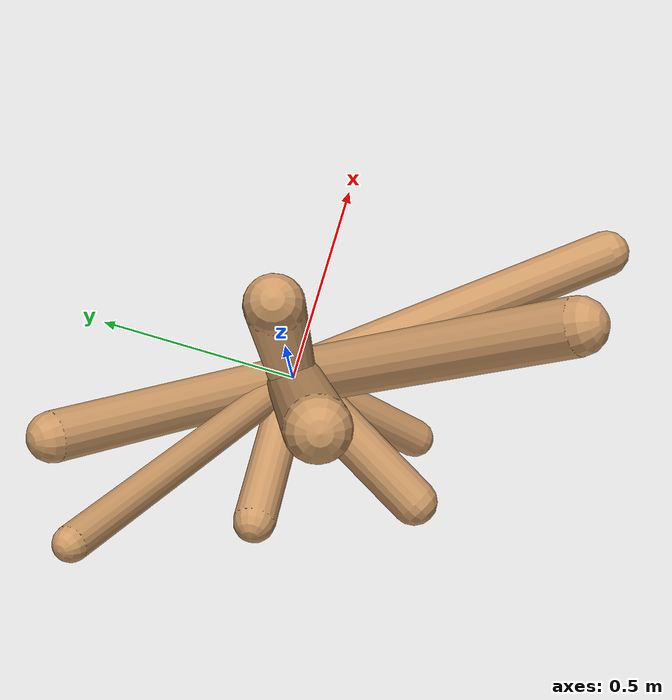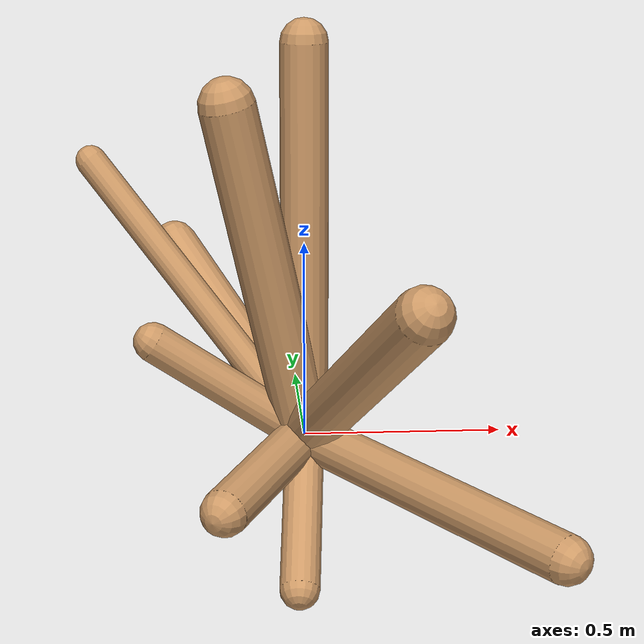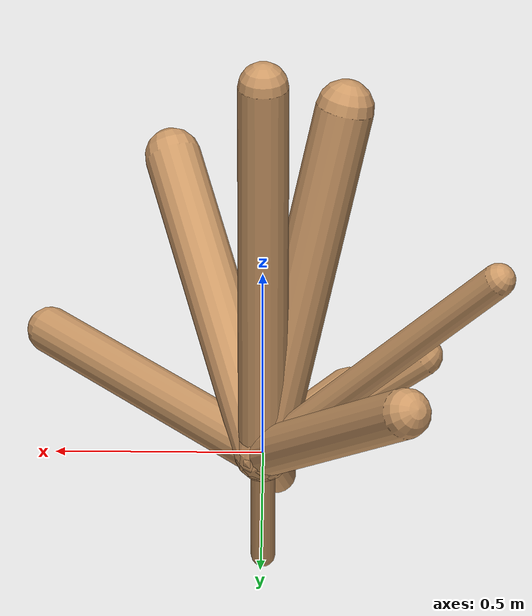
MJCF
<!--
                    joint_number: 9
                    -->
                    <mujoco model="randomrobot">
                        <compiler angle="degree" coordinate="global" inertiafromgeom="true"/>
                        <default>
                        <joint armature="0.01" damping=".1" limited="true"/>
                        <geom conaffinity="0" condim="3" contype="1" density="1000" friction="0.8 .1 .1" rgba="0.8 0.6 .4 1"/>
                        </default>
                        <option integrator="RK4" timestep="0.002"/>
                        <worldbody>
                    <body name='torso' pos='0.00 0.00 0.67'><geom fromto='0 0 0 0.00 0.00 1.00' name='torso_geom' size='0.06' type='capsule'/><inertial mass='0.3'/><body name='L0_D1' pos='0.00 0.00 0.03'><joint axis='0 1 0' name='L0_D1_joint' pos='0 0 0' range='41.07 43.25' type='hinge'/><geom fromto='0 0 0 -0.54 0.29 0.66' name='L0_D1_geom' size='0.04' type='capsule'/><inertial mass='0.3'/><body name='L1_D0' pos='-0.01 0.01 0.02'><joint axis='1 0 0' name='L1_D0_joint' pos='0 0 0' range='8.60 159.09' type='hinge'/><geom fromto='0 0 0 -0.33 0.45 0.40' name='L1_D0_geom' size='0.06' type='capsule'/><inertial mass='0.3'/></body></body><body name='L2_D1' pos='0.00 0.00 0.51'><joint axis='1 0 0' name='L2_D1_joint' pos='0 0 0' range='41.80 70.25' type='hinge'/><geom fromto='0 0 0 -0.03 -0.34 -0.28' name='L2_D1_geom' size='0.05' type='capsule'/><inertial mass='0.3'/><body name='L3_D0' pos='-0.02 -0.29 -0.25'><joint axis='0 0 1' name='L3_D0_joint' pos='0 0 0' range='29.40 45.06' type='hinge'/><geom fromto='0 0 0 -0.19 -0.14 0.87' name='L3_D0_geom' size='0.07' type='capsule'/><inertial mass='0.3'/></body><body name='L4_D0' pos='-0.02 -0.29 -0.24'><joint axis='1 0 0' name='L4_D0_joint' pos='0 0 0' range='35.47 49.70' type='hinge'/><geom fromto='0 0 0 -0.00 -0.05 -0.33' name='L4_D0_geom' size='0.03' type='capsule'/><inertial mass='0.3'/></body></body><body name='L5_D1' pos='0.00 0.00 0.06'><joint axis='0 0 1' name='L5_D1_joint' pos='0 0 0' range='58.41 77.67' type='hinge'/><geom fromto='0 0 0 -0.38 -0.03 0.26' name='L5_D1_geom' size='0.05' type='capsule'/><inertial mass='0.3'/><body name='L6_D0' pos='-0.13 -0.01 0.09'><joint axis='0 1 0' name='L6_D0_joint' pos='0 0 0' range='68.16 86.00' type='hinge'/><geom fromto='0 0 0 0.55 -0.68 -0.07' name='L6_D0_geom' size='0.06' type='capsule'/><inertial mass='0.3'/></body><body name='L7_D0' pos='-0.13 -0.01 0.09'><joint axis='1 0 0' name='L7_D0_joint' pos='0 0 0' range='23.16 111.13' type='hinge'/><geom fromto='0 0 0 0.23 -0.61 0.48' name='L7_D0_geom' size='0.07' type='capsule'/><inertial mass='0.3'/></body></body><body name='L8_D1' pos='0.00 0.00 0.29'><joint axis='0 0 1' name='L8_D1_joint' pos='0 0 0' range='149.76 170.30' type='hinge'/><geom fromto='0 0 0 -0.21 -0.38 -0.06' name='L8_D1_geom' size='0.06' type='capsule'/><inertial mass='0.3'/></body></body>
                        </worldbody>
                    </mujoco>
